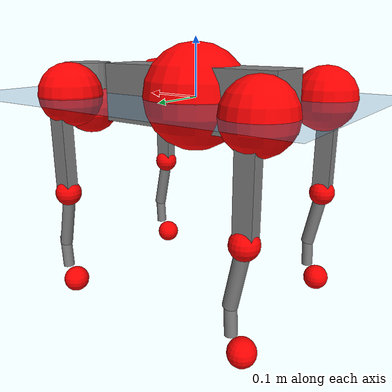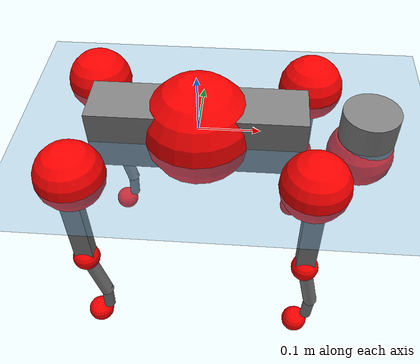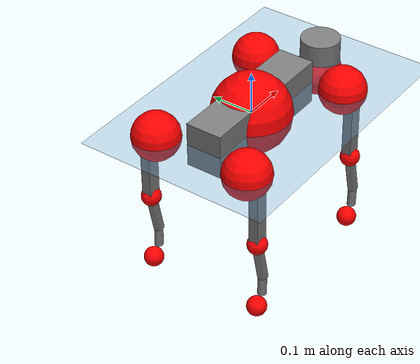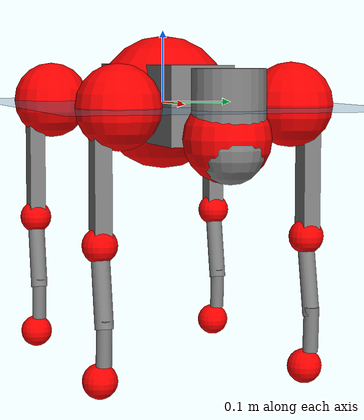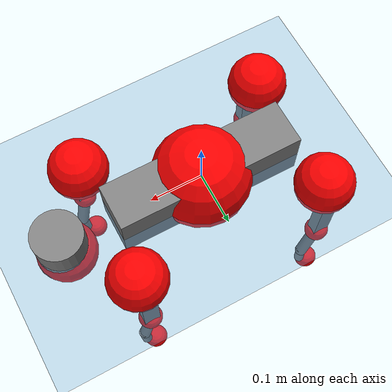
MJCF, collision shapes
<mujoco model="go2">
  <compiler angle="radian" assetdir="assets" balanceinertia="true" inertiafromgeom="false"/>

  <option timestep="0.005" density="1.2" viscosity="2e-05"/>

  <size nkey="1"/>

  <visual>
    <quality shadowsize="8192"/>
    <map shadowclip="0.5"/>
  </visual>

  <default>
    <default class="/">
      <geom contype="0" conaffinity="0" group="1" solref="-1000 -80"/>
      <site size="0.01 0.005 0.005" group="5"/>
      <general forcelimited="true" biastype="affine" gainprm="20" biasprm="0 -20 -0.5"/>
      <default class="go2">
        <joint armature="0.01" damping="0.01" frictionloss="0.2"/>
        <geom condim="1" margin="0.001"/>
        <default class="visual">
          <geom type="mesh" group="2"/>
        </default>
        <default class="collision">
          <geom group="3"/>
          <default class="foot">
            <geom size="0.022 0 0" condim="6" priority="1" friction="0.8 0.02 0.01" solimp="0.015 1 0.022"/>
          </default>
        </default>
        <default class="reward_collision_sphere">
          <geom group="5" rgba="1 0 0 1"/>
        </default>
      </default>
    </default>
  </default>

  <asset>
    <texture type="skybox" colorspace="auto" name="//unnamed_texture_0" builtin="gradient" rgb1="0.95 0.95 0.95" rgb2="0.95 0.95 0.95" width="100" height="600"/>
    <texture type="2d" colorspace="auto" name="texplane" builtin="checker" rgb1="0.345 0.575 0.748" rgb2="0.345 0.575 0.748" markrgb="1 1 1" width="512" height="512"/>
    <material name="MatPlane" class="/" texture="texplane" texuniform="true" texrepeat="2 2" specular="0.9"/>
    <material name="metal" class="/" rgba="0.9 0.95 0.95 1"/>
    <material name="black" class="/" rgba="0 0 0 1"/>
    <material name="white" class="/"/>
    <material name="gray" class="/" rgba="0.671705 0.692426 0.77427 1"/>
    <mesh name="base_0" class="/" file="base_0.obj"/>
    <mesh name="base_1" class="/" file="base_1.obj"/>
    <mesh name="base_2" class="/" file="base_2.obj"/>
    <mesh name="base_3" class="/" file="base_3.obj"/>
    <mesh name="base_4" class="/" file="base_4.obj"/>
    <mesh name="hip_0" class="/" file="hip_0.obj"/>
    <mesh name="hip_1" class="/" file="hip_1.obj"/>
    <mesh name="thigh_0" class="/" file="thigh_0.obj"/>
    <mesh name="thigh_1" class="/" file="thigh_1.obj"/>
    <mesh name="thigh_mirror_0" class="/" file="thigh_mirror_0.obj"/>
    <mesh name="thigh_mirror_1" class="/" file="thigh_mirror_1.obj"/>
    <mesh name="calf_0" class="/" file="calf_0.obj"/>
    <mesh name="calf_1" class="/" file="calf_1.obj"/>
    <mesh name="calf_mirror_0" class="/" file="calf_mirror_0.obj"/>
    <mesh name="calf_mirror_1" class="/" file="calf_mirror_1.obj"/>
    <mesh name="foot" class="/" file="foot.obj"/>
  </asset>

  <worldbody>
    <geom name="floor" class="/" size="100 100 0.125" type="plane" group="0" material="MatPlane"/>
    <light name="toplight_shadow" class="/" pos="0 0 5" dir="0.0990148 0.0990148 -0.990148" type="directional" ambient="0.04 0.04 0.04" diffuse="0.55 0.55 0.55" specular="0.12 0.12 0.12"/>
    <light name="toplight_fill" class="/" pos="0 0 5" dir="0.0990148 0.0990148 -0.990148" type="directional" castshadow="false" ambient="0.04 0.04 0.04" diffuse="0.3 0.3 0.3" specular="0.08 0.08 0.08"/>
    <body name="trunk" childclass="go2" pos="0.000263677 0.000152022 0.00038303" quat="1 0.00011928 -0.000148305 -0.000110139">
      <inertial pos="0.0199146 -0.000698577 -0.00543653" quat="0.000767238 0.715126 0.000184418 0.698995" mass="5.4156" diaginertia="0.08494 0.0995206 0.00909602"/>
      <joint name="//unnamed_joint_0" type="free" armature="0" damping="0" frictionloss="0"/>
      <geom name="//unnamed_geom_1" class="visual" material="black" mesh="base_0"/>
      <geom name="//unnamed_geom_2" class="visual" material="black" mesh="base_1"/>
      <geom name="//unnamed_geom_3" class="visual" material="black" mesh="base_2"/>
      <geom name="//unnamed_geom_4" class="visual" material="white" mesh="base_3"/>
      <geom name="//unnamed_geom_5" class="visual" material="gray" mesh="base_4"/>
      <geom name="trunk_1" class="collision" size="0.174171 0.0432882 0.0527792" type="box"/>
      <geom name="trunk_2" class="collision" size="0.0462975 0.0416678" pos="0.272428 0 0.00820254" type="cylinder"/>
      <geom name="trunk_3" class="collision" size="0.0435197" pos="0.280075 0 -0.0492153"/>
      <geom name="//unnamed_geom_9" class="reward_collision_sphere" size="0.092595"/>
      <geom name="//unnamed_geom_10" class="reward_collision_sphere" size="0.055557" pos="0.267648 0 -0.0369115"/>
      <site name="imu" pos="-0.0324373 -0.00263528 0.0385231" size="0.0092595"/>
      <camera name="track" pos="0 -2.00342 0" quat="0.707107 0.707107 0 0" mode="trackcom"/>
      <camera name="ego_camera" pos="0.298236 0 0.0369115" quat="-0.5 -0.5 0.5 0.5"/>
      <body name="FL_hip" pos="0.185282 0.0471494 0.00176812" quat="1 1.96697e-05 0.000260633 0.000141008">
        <inertial pos="-0.00416401 0.00293819 -0.000309779" quat="0.499779 0.499814 0.502765 0.497628" mass="0.533584" diaginertia="0.000697941 0.000603333 0.000177653"/>
        <joint name="FL_hip_joint" pos="0 0 0" axis="0.999978 0.0065751 0.000754862" range="-1.05267 1.03103" armature="0.00986535" damping="0.00124711" frictionloss="0.18128"/>
        <geom name="//unnamed_geom_11" class="visual" material="metal" mesh="hip_0"/>
        <geom name="//unnamed_geom_12" class="visual" material="gray" mesh="hip_1"/>
        <geom name="//unnamed_geom_13" class="collision" size="0.0425937 0.018519" pos="0 0.0801368 0" quat="0.707107 0.707107 0 0" type="cylinder"/>
        <geom name="//unnamed_geom_14" class="reward_collision_sphere" size="0.055557" pos="0 0.0701197 0"/>
        <body name="FL_thigh" pos="-0.00045503 0.0955122 0.00172042" quat="1 -1.09988e-05 -1.44226e-06 3.80185e-06">
          <inertial pos="-0.00477798 -0.0221893 -0.0258246" quat="0.829615 0.0853058 -0.0211101 0.551377" mass="0.905907" diaginertia="0.00468748 0.00589053 0.000324402"/>
          <joint name="FL_thigh_joint" pos="0 0 0" axis="0.000490462 1 -0.000418339" range="-1.56815 3.48989" armature="0.00946641" damping="0.0108573" frictionloss="0.178007"/>
          <geom name="//unnamed_geom_15" class="visual" material="metal" mesh="thigh_0"/>
          <geom name="//unnamed_geom_16" class="visual" material="gray" mesh="thigh_1"/>
          <geom name="//unnamed_geom_17" class="collision" size="0.0986137 0.0113429 0.0157412" pos="0 0 -0.0873571" quat="0.707107 0 0.707107 0" type="box"/>
          <body name="FL_calf" pos="-0.000664284 -0.00138771 -0.176333" quat="1 -1.15049e-05 1.88973e-05 -2.20156e-05">
            <inertial pos="0.00616476 -0.000591509 -0.115174" quat="0.710348 0.00135593 -0.00456409 0.703835" mass="0.194488" diaginertia="0.00120227 0.00147474 1.9907e-05"/>
            <joint name="FL_calf_joint" pos="0 0 0" axis="-0.00702584 0.999956 0.00619938" stiffness="0.00219475" range="-2.71366 -0.854061" armature="0.0087807" damping="0" frictionloss="0.179285"/>
            <geom name="//unnamed_geom_18" class="visual" material="gray" mesh="calf_0"/>
            <geom name="//unnamed_geom_19" class="visual" material="black" mesh="calf_1"/>
            <geom name="FL_calf0" class="collision" size="0.0111114 0.055557" pos="0.00764709 0 -0.0492153" quat="0.994493 0 -0.104807 0" type="cylinder"/>
            <geom name="//unnamed_geom_21" class="collision" size="0.0101855 0.0300934" pos="0.0191177 0 -0.121398" quat="0.999688 0 0.0249974 0" type="cylinder"/>
            <geom name="//unnamed_geom_22" class="visual" pos="0 0 -0.174714" quat="1 0 0 0" material="black" mesh="foot"/>
            <geom name="FL_foot" class="foot" size="0.0179952" pos="-0.00191177 0 -0.174714"/>
            <geom name="//unnamed_geom_24" class="reward_collision_sphere" size="0.0231488"/>
            <geom name="//unnamed_geom_25" class="reward_collision_sphere" size="0.0231488" pos="-0.00191177 0 -0.174714"/>
            <site name="FL_foot" class="foot" pos="-0.00191177 0 -0.174714" size="0.0092595"/>
          </body>
        </body>
      </body>
      <body name="FR_hip" pos="0.186079 -0.046158 0.000479624" quat="1 3.68171e-07 3.53536e-06 6.23314e-06">
        <inertial pos="-0.00427843 -0.00223415 -0.00012061" quat="0.49846 0.505291 0.499113 0.497096" mass="0.533823" diaginertia="0.000707685 0.000589454 0.000176764"/>
        <joint name="FR_hip_joint" pos="0 0 0" axis="0.99999 -0.00357997 0.00278457" stiffness="0.00162832" range="-1.06738 1.05996" armature="0.00894857" damping="0.0177059" frictionloss="0.177756"/>
        <geom name="//unnamed_geom_26" class="visual" pos="0 1.58077e-09 6.78024e-08" quat="4.63268e-05 1 0 0" material="metal" mesh="hip_0"/>
        <geom name="//unnamed_geom_27" class="visual" pos="0 2.56261e-09 -1.67701e-07" quat="4.63268e-05 1 0 0" material="gray" mesh="hip_1"/>
        <geom name="//unnamed_geom_28" class="collision" size="0.0425937 0.018519" pos="0 -0.0801368 0" quat="0.707107 0.707107 0 0" type="cylinder"/>
        <geom name="//unnamed_geom_29" class="reward_collision_sphere" size="0.055557" pos="0 -0.0701197 0"/>
        <body name="FR_thigh" pos="0.00135739 -0.0943576 0.000620057" quat="1 2.22182e-05 0.000289137 -8.66806e-05">
          <inertial pos="-0.00368904 0.0229943 -0.0270206" quat="0.551526 -0.0217825 0.0822099 0.829811" mass="0.900851" diaginertia="0.00476648 0.00584416 0.000322365"/>
          <joint name="FR_thigh_joint" pos="0 0 0" axis="0.00362201 -0.999993 0.000520915" range="-3.46081 1.5609" armature="0.00925273" damping="0.00609541" frictionloss="0.20291"/>
          <geom name="//unnamed_geom_30" class="visual" material="metal" mesh="thigh_mirror_0"/>
          <geom name="//unnamed_geom_31" class="visual" material="gray" mesh="thigh_mirror_1"/>
          <geom name="//unnamed_geom_32" class="collision" size="0.0986137 0.0113429 0.0157412" pos="0 0 -0.0873571" quat="0.707107 0 0.707107 0" type="box"/>
          <body name="FR_calf" pos="0.000711126 -0.00144143 -0.175019" quat="1 -1.98195e-05 -3.09046e-05 -2.31935e-05">
            <inertial pos="0.00577836 0.000962539 -0.115203" quat="0.70279 -0.000531663 0.00227512 0.711394" mass="0.190546" diaginertia="0.00116802 0.00147356 1.97149e-05"/>
            <joint name="FR_calf_joint" pos="0 0 0" axis="0.000461436 -0.999999 -0.00124887" range="0.852143 2.7125" armature="0.00950739" damping="0.0113368" frictionloss="0.172445"/>
            <geom name="//unnamed_geom_33" class="visual" material="gray" mesh="calf_mirror_0"/>
            <geom name="//unnamed_geom_34" class="visual" material="black" mesh="calf_mirror_1"/>
            <geom name="FR_calf0" class="collision" size="0.0120374 0.055557" pos="0.00955886 0 -0.0492153" quat="0.995004 0 -0.0998334 0" type="cylinder"/>
            <geom name="//unnamed_geom_36" class="collision" size="0.0101855 0.0300934" pos="0.0191177 0 -0.121398" quat="0.999688 0 0.0249974 0" type="cylinder"/>
            <geom name="//unnamed_geom_37" class="visual" pos="0 0 -0.174714" quat="1 0 0 0" material="black" mesh="foot"/>
            <geom name="FR_foot" class="foot" size="0.0201418" pos="-0.00191177 0 -0.174714"/>
            <geom name="//unnamed_geom_39" class="reward_collision_sphere" size="0.0231488"/>
            <geom name="//unnamed_geom_40" class="reward_collision_sphere" size="0.0231488" pos="-0.00191177 0 -0.174714"/>
            <site name="FR_foot" class="foot" pos="-0.00191177 0 -0.174714" size="0.0092595"/>
          </body>
        </body>
      </body>
      <body name="RL_hip" pos="-0.186435 0.0458061 -0.00088748" quat="1 4.31096e-07 -2.92986e-06 -1.95282e-06">
        <inertial pos="0.00416041 0.00337701 0.00027205" quat="0.504706 0.499045 0.494476 0.501717" mass="0.534069" diaginertia="0.000706632 0.000607832 0.000175357"/>
        <joint name="RL_hip_joint" pos="0 0 0" axis="-0.999797 -0.0200612 -0.00179166" stiffness="0.00232597" range="-1.06392 1.00825" armature="0.00881324" damping="0.012411" frictionloss="0.187847"/>
        <geom name="//unnamed_geom_41" class="visual" pos="-1.18157e-09 0 -2.31614e-07" quat="4.63268e-05 0 1 0" material="metal" mesh="hip_0"/>
        <geom name="//unnamed_geom_42" class="visual" pos="-1.91546e-09 0 -2.05409e-07" quat="4.63268e-05 0 1 0" material="gray" mesh="hip_1"/>
        <geom name="//unnamed_geom_43" class="collision" size="0.0425937 0.018519" pos="0 0.0801368 0" quat="0.707107 0.707107 0 0" type="cylinder"/>
        <geom name="//unnamed_geom_44" class="reward_collision_sphere" size="0.055557" pos="0 0.0701197 0"/>
        <body name="RL_thigh" pos="0.000638599 0.0934316 -0.000362159" quat="1 4.09417e-06 1.19956e-05 6.54282e-07">
          <inertial pos="-0.00343836 -0.0218113 -0.0273595" quat="0.829886 0.0842848 -0.0198035 0.551175" mass="0.91552" diaginertia="0.00474194 0.0059478 0.000324655"/>
          <joint name="RL_thigh_joint" pos="0 0 0" axis="-0.000815231 0.999986 0.00517564" range="-0.524439 4.52871" armature="0.00970384" damping="0.00982233" frictionloss="0.178629"/>
          <geom name="//unnamed_geom_45" class="visual" material="metal" mesh="thigh_0"/>
          <geom name="//unnamed_geom_46" class="visual" material="gray" mesh="thigh_1"/>
          <geom name="//unnamed_geom_47" class="collision" size="0.0986137 0.0113429 0.0157412" pos="0 0 -0.0873571" quat="0.707107 0 0.707107 0" type="box"/>
          <body name="RL_calf" pos="0.000999385 0.000496615 -0.173961" quat="1 0.000393722 -0.000238077 0.000208849">
            <inertial pos="0.0059079 -0.0004571 -0.115863" quat="0.714776 -0.00517388 -0.00701471 0.6993" mass="0.191979" diaginertia="0.00119228 0.00148925 1.93828e-05"/>
            <joint name="RL_calf_joint" pos="0 0 0" axis="-0.0120388 0.99992 0.00387297" stiffness="0.00223841" range="-2.72355 -0.83813" armature="0.0092578" damping="0.00364035" frictionloss="0.180148"/>
            <geom name="//unnamed_geom_48" class="visual" material="gray" mesh="calf_0"/>
            <geom name="//unnamed_geom_49" class="visual" material="black" mesh="calf_1"/>
            <geom name="RL_calf0" class="collision" size="0.0120374 0.055557" pos="0.00955886 0 -0.0492153" quat="0.995004 0 -0.0998334 0" type="cylinder"/>
            <geom name="//unnamed_geom_51" class="collision" size="0.0101855 0.0300934" pos="0.0191177 0 -0.121398" quat="0.999688 0 0.0249974 0" type="cylinder"/>
            <geom name="//unnamed_geom_52" class="visual" pos="0 0 -0.174714" quat="1 0 0 0" material="black" mesh="foot"/>
            <geom name="RL_foot" class="foot" size="0.018486" pos="-0.00191177 0 -0.174714"/>
            <geom name="//unnamed_geom_54" class="reward_collision_sphere" size="0.0231488"/>
            <geom name="//unnamed_geom_55" class="reward_collision_sphere" size="0.0231488" pos="-0.00191177 0 -0.174714"/>
            <site name="RL_foot" class="foot" pos="-0.00191177 0 -0.174714" size="0.0092595"/>
          </body>
        </body>
      </body>
      <body name="RR_hip" pos="-0.184581 -0.0485607 -0.00120673" quat="1 -6.20401e-05 2.75427e-05 -8.17446e-05">
        <inertial pos="0.00396287 -0.00168247 0.000604864" quat="0.500123 0.496897 0.497641 0.505296" mass="0.544151" diaginertia="0.000715977 0.000609098 0.000177204"/>
        <joint name="RR_hip_joint" pos="0 0 0" axis="-1 0.000379095 0.000269633" stiffness="0.00159991" range="-1.05524 1.07862" armature="0.0091325" damping="0.00400828" frictionloss="0.186361"/>
        <geom name="//unnamed_geom_56" class="visual" pos="1.18315e-09 1.58077e-09 -2.99417e-07" quat="2.14617e-09 4.63268e-05 4.63268e-05 -1" material="metal" mesh="hip_0"/>
        <geom name="//unnamed_geom_57" class="visual" pos="1.91154e-09 2.56261e-09 -3.77077e-08" quat="2.14617e-09 4.63268e-05 4.63268e-05 -1" material="gray" mesh="hip_1"/>
        <geom name="//unnamed_geom_58" class="collision" size="0.0425937 0.018519" pos="0 -0.0801368 0" quat="0.707107 0.707107 0 0" type="cylinder"/>
        <geom name="//unnamed_geom_59" class="reward_collision_sphere" size="0.055557" pos="0 -0.0701197 0"/>
        <body name="RR_thigh" pos="0.000747586 -0.0953156 5.66058e-05" quat="1 -6.31947e-05 -7.26697e-05 1.64752e-06">
          <inertial pos="-0.00378471 0.0222524 -0.0264572" quat="0.551447 -0.0204033 0.0848032 0.829638" mass="0.87823" diaginertia="0.00461124 0.00573838 0.000319879"/>
          <joint name="RR_thigh_joint" pos="0 0 0" axis="0.00890645 -0.999959 0.00134149" range="-4.54313 0.525439" armature="0.00966489" damping="0.0205892" frictionloss="0.187175"/>
          <geom name="//unnamed_geom_60" class="visual" material="metal" mesh="thigh_mirror_0"/>
          <geom name="//unnamed_geom_61" class="visual" material="gray" mesh="thigh_mirror_1"/>
          <geom name="//unnamed_geom_62" class="collision" size="0.0986137 0.0113429 0.0157412" pos="0 0 -0.0873571" quat="0.707107 0 0.707107 0" type="box"/>
          <body name="RR_calf" pos="-0.000315709 -0.000454661 -0.17606" quat="1 -8.97059e-05 -0.000408001 -0.00037604">
            <inertial pos="0.00673948 0.000716814 -0.116376" quat="0.702281 -0.00603487 0.00115185 0.711873" mass="0.193073" diaginertia="0.00120428 0.00148534 1.96916e-05"/>
            <joint name="RR_calf_joint" pos="0 0 0" axis="-0.00230265 -0.999994 0.00276533" range="0.827381 2.73378" armature="0.00861876" damping="0.00469526" frictionloss="0.184954"/>
            <geom name="//unnamed_geom_63" class="visual" material="gray" mesh="calf_mirror_0"/>
            <geom name="//unnamed_geom_64" class="visual" material="black" mesh="calf_mirror_1"/>
            <geom name="RR_calf0" class="collision" size="0.0120374 0.055557" pos="0.00955886 0 -0.0492153" quat="0.995004 0 -0.0998334 0" type="cylinder"/>
            <geom name="//unnamed_geom_66" class="collision" size="0.0101855 0.0300934" pos="0.0191177 0 -0.121398" quat="0.999688 0 0.0249974 0" type="cylinder"/>
            <geom name="//unnamed_geom_67" class="visual" pos="0 0 -0.174714" quat="1 0 0 0" material="black" mesh="foot"/>
            <geom name="RR_foot" class="foot" size="0.0219459" pos="-0.00191177 0 -0.174714"/>
            <geom name="//unnamed_geom_69" class="reward_collision_sphere" size="0.0231488"/>
            <geom name="//unnamed_geom_70" class="reward_collision_sphere" size="0.0231488" pos="-0.00191177 0 -0.174714"/>
            <site name="RR_foot" class="foot" pos="-0.00191177 0 -0.174714" size="0.0092595"/>
          </body>
        </body>
      </body>
    </body>
  </worldbody>

  <contact>
    <pair class="/" geom1="floor" geom2="FL_foot" name="//unnamed_contact_0"/>
    <pair class="/" geom1="floor" geom2="FR_foot" name="//unnamed_contact_1"/>
    <pair class="/" geom1="floor" geom2="RL_foot" name="//unnamed_contact_2"/>
    <pair class="/" geom1="floor" geom2="RR_foot" name="//unnamed_contact_3"/>
  </contact>

  <actuator>
    <general name="FL_hip" class="/" joint="FL_hip_joint" forcerange="-21.5071 21.5071" gainprm="18.6669" biasprm="0 -18.6669 -0.468933"/>
    <general name="FL_thigh" class="/" joint="FL_thigh_joint" forcerange="-22.6709 22.6709" gainprm="18.6669" biasprm="0 -18.6669 -0.468933"/>
    <general name="FL_calf" class="/" joint="FL_calf_joint" forcerange="-41.9162 41.9162" gainprm="18.6669" biasprm="0 -18.6669 -0.468933"/>
    <general name="FR_hip" class="/" joint="FR_hip_joint" forcerange="-22.4965 22.4965" gainprm="18.6669" biasprm="0 -18.6669 -0.468933"/>
    <general name="FR_thigh" class="/" joint="FR_thigh_joint" forcerange="-21.0908 21.0908" gainprm="18.6669" biasprm="0 -18.6669 -0.468933"/>
    <general name="FR_calf" class="/" joint="FR_calf_joint" forcerange="-40.7975 40.7975" gainprm="18.6669" biasprm="0 -18.6669 -0.468933"/>
    <general name="RL_hip" class="/" joint="RL_hip_joint" forcerange="-21.9091 21.9091" gainprm="18.6669" biasprm="0 -18.6669 -0.468933"/>
    <general name="RL_thigh" class="/" joint="RL_thigh_joint" forcerange="-21.3194 21.3194" gainprm="18.6669" biasprm="0 -18.6669 -0.468933"/>
    <general name="RL_calf" class="/" joint="RL_calf_joint" forcerange="-41.8203 41.8203" gainprm="18.6669" biasprm="0 -18.6669 -0.468933"/>
    <general name="RR_hip" class="/" joint="RR_hip_joint" forcerange="-22.5153 22.5153" gainprm="18.6669" biasprm="0 -18.6669 -0.468933"/>
    <general name="RR_thigh" class="/" joint="RR_thigh_joint" forcerange="-20.8083 20.8083" gainprm="18.6669" biasprm="0 -18.6669 -0.468933"/>
    <general name="RR_calf" class="/" joint="RR_calf_joint" forcerange="-43.2163 43.2163" gainprm="18.6669" biasprm="0 -18.6669 -0.468933"/>
  </actuator>

  <sensor>
    <gyro site="imu" name="imu_angular_velocity"/>
    <velocimeter site="imu" name="imu_linear_velocity"/>
    <framelinvel objtype="site" objname="FL_foot" name="FL_foot_global_linear_velocity"/>
    <framelinvel objtype="site" objname="FR_foot" name="FR_foot_global_linear_velocity"/>
    <framelinvel objtype="site" objname="RL_foot" name="RL_foot_global_linear_velocity"/>
    <framelinvel objtype="site" objname="RR_foot" name="RR_foot_global_linear_velocity"/>
  </sensor>

  <keyframe>
    <key name="home" qpos="0 0 0.325 1 0 0 0 0.1 0.8 -1.5 -0.1 -0.8 1.5 -0.1 0.8 -1.5 0.1 -0.8 1.5"/>
  </keyframe>
</mujoco>
